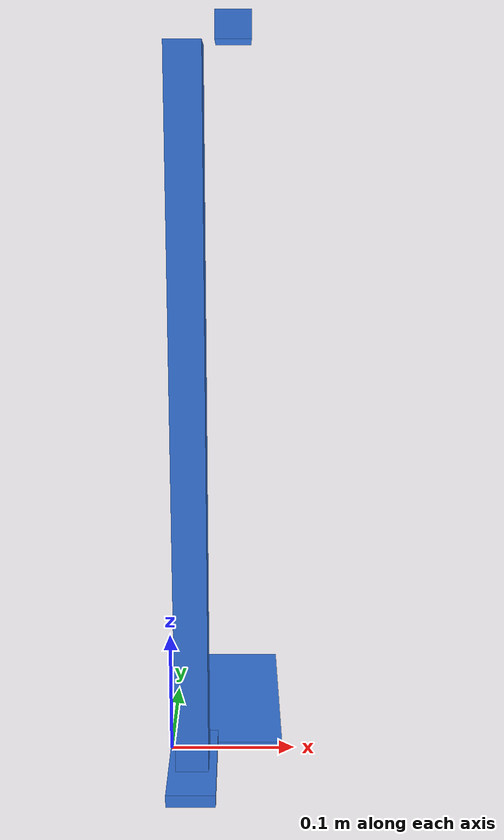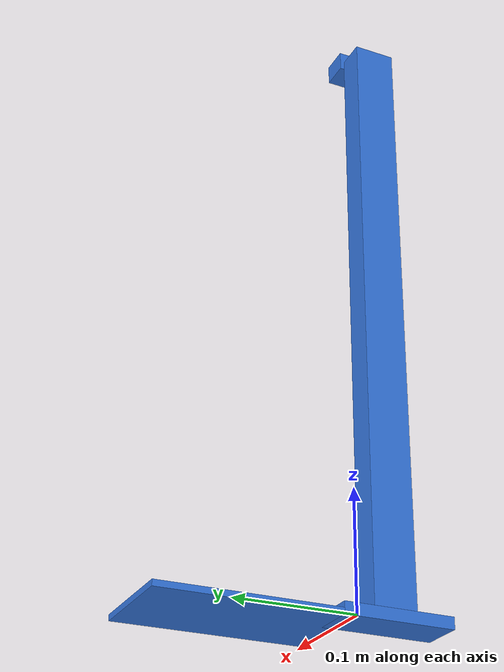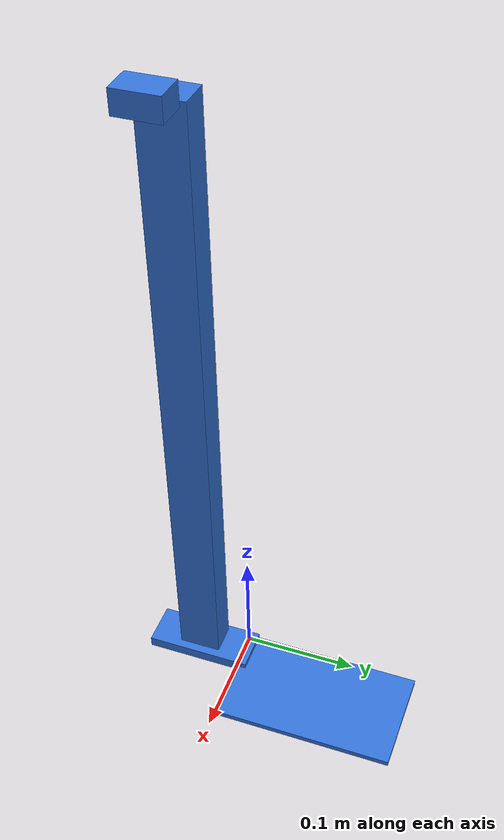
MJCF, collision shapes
<mujoco model="so101_tower_stand">
  <compiler angle="radian" meshdir="so101_tower_stand"/>
  <asset>
    <mesh name="arm_base" file="arm_base.stl" scale="0.001 0.001 0.001"/>
    <mesh name="cam_mount_bottom" file="cam_mount_bottom.stl" scale="0.001 0.001 0.001"/>
    <mesh name="cam_mount_middle" file="cam_mount_middle.stl" scale="0.001 0.001 0.001"/>
    <mesh name="cam_mount_top" file="cam_mount_top.stl" scale="0.001 0.001 0.001"/>
    <material name="stand_pla" rgba="0.20 0.45 0.85 1"/>
  </asset>
  <worldbody>
    <body name="stand">
      <!-- visual: the four prints, in the bottom part's frame -->
      <!-- arm_base: the foot's orientation, chained onto its z = 0 end; the
           plate spans body x 0..90, y 0..159 -->
      <geom type="mesh" mesh="arm_base" material="stand_pla" contype="0" conaffinity="0" group="2"
            pos="0.094 0.026 0.005" quat="0.7071068 0.7071068 0 0"/>
      <geom type="mesh" mesh="cam_mount_bottom" material="stand_pla" contype="0" conaffinity="0" group="2"
            pos="0 0 0" quat="0.7071068 0.7071068 0 0"/>
      <geom type="mesh" mesh="cam_mount_middle" material="stand_pla" contype="0" conaffinity="0" group="2"
            pos="0.0187 -0.0365 0.188" quat="0.7071068 0.7071068 0 0"/>
      <geom type="mesh" mesh="cam_mount_top" material="stand_pla" contype="0" conaffinity="0" group="2"
            pos="0.0187 -0.0365 0.188" quat="0.7071068 0.7071068 0 0"/>
      <!-- collision: foot, post, head, base plate -->
      <geom name="foot" type="box" pos="0.0187 -0.0365 0.005" size="0.0187 0.0465 0.005"
            rgba="0.20 0.45 0.85 0.3" group="3"/>
      <geom name="post" type="box" pos="0.0187 -0.0365 0.277" size="0.0127 0.0183 0.265"
            rgba="0.20 0.45 0.85 0.3" group="3"/>
      <geom name="head" type="box" pos="0.0517 -0.0365 0.551" size="0.012 0.0175 0.009"
            rgba="0.20 0.45 0.85 0.3" group="3"/>
      <geom name="plate" type="box" pos="0.045 0.0795 0.0025" size="0.045 0.0795 0.0025"
            rgba="0.20 0.45 0.85 0.3" group="3"/>
      <!-- the overhead IMX335, CALIBRATED — see the header -->
      <camera name="overhead_cam" pos="0.06067 -0.03998 0.53666"
              xyaxes="0.0059 -1.0000 0.0069  0.9042 0.0083 0.4270" fovy="73.7398"/>
    </body>
  </worldbody>
</mujoco>
